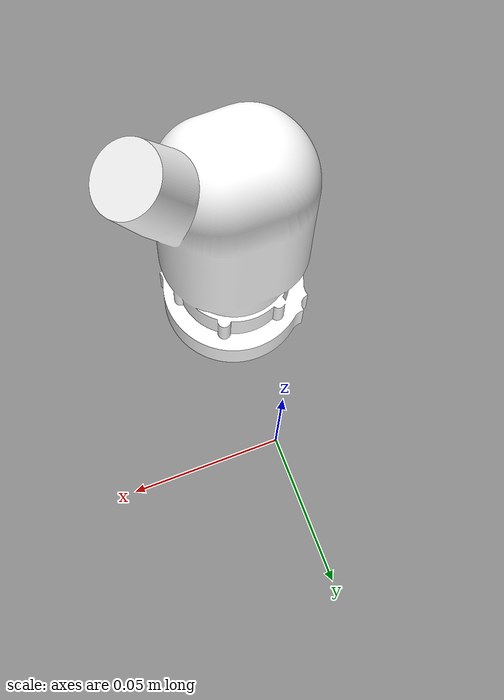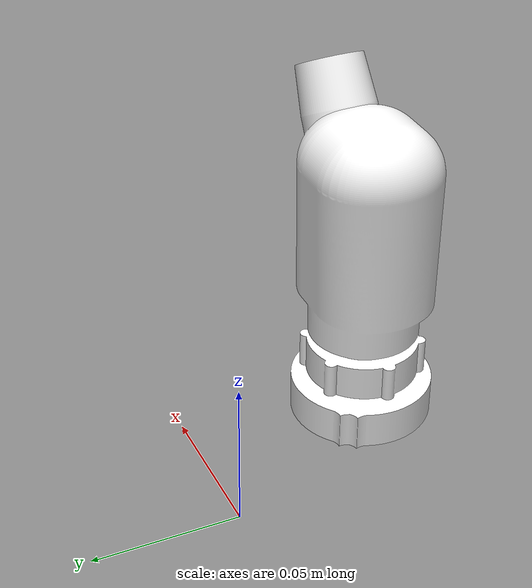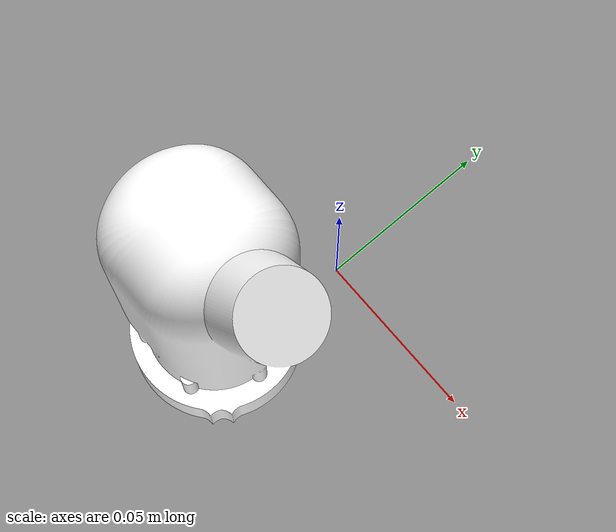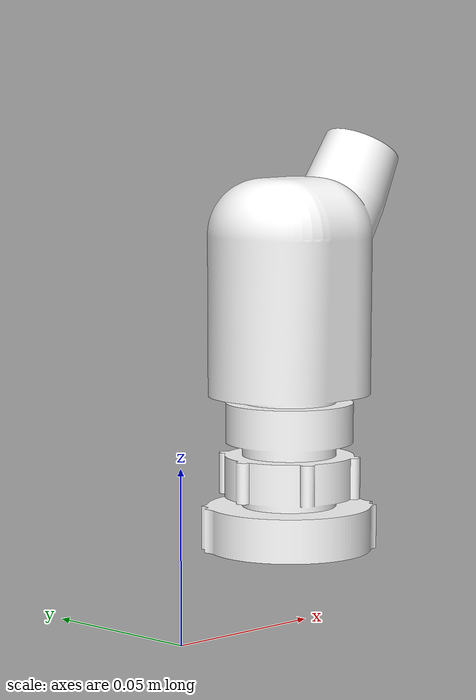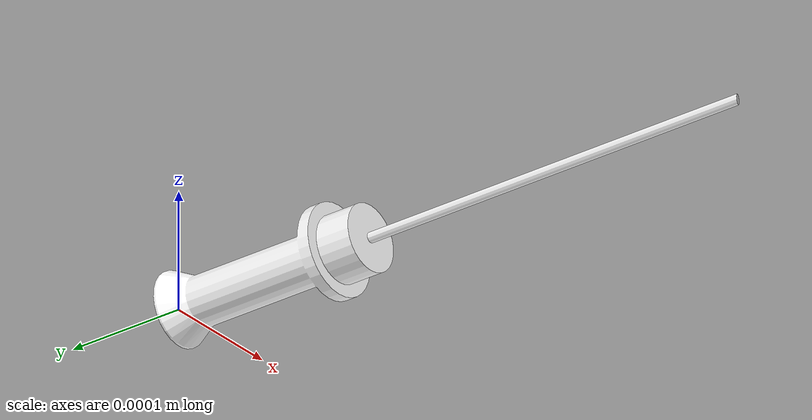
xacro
<?xml version="1.0"?>

<!-- Here we define the robot, we named it "endoscope" -->
<robot xmlns:xacro="http://www.ros.org/wiki/xacro" name="tilt_endoscope">

    <!--Import the endoscope macro -->
    <xacro:include filename="$(find storz_tilt_endoscope_description)/urdf/storz_tilt_endoscope_description.urdf.xacro"/>

    <!--  Arguments for the med7 macro  -->
    <xacro:arg name="tilt_endoscope_name" default="storz_tilt_endoscope"/>
    <xacro:arg name="robot_name" default="lbr"/>

    <!-- fix to world -->
    <link name="world"/>

    <!-- insert endoscope -->
    <xacro:storz_tilt_endoscope  tilt_endoscope_name="$(arg tilt_endoscope_name)" robot_name="$(arg robot_name)" parent="world"/>

</robot>

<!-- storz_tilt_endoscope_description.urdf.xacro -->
<robot xmlns:xacro="http://www.ros.org/wiki/xacro">

    <xacro:macro name="storz_tilt_endoscope" params="tilt_endoscope_name robot_name parent">

        <!-- include gazebo specifications -->
        <xacro:include filename="$(find storz_tilt_endoscope_description)/gazebo/storz_tilt_endoscope.gazebo.xacro" />

        <!--joint between {parent} and link_0-->
        <joint name="${parent}_${tilt_endoscope_name}_joint" type="fixed">
            <parent link="${parent}"/>
            <child link="${tilt_endoscope_name}_link_0"/>
            <origin xyz="0 0 0" rpy="0 -1.57079632679 1.57079632679"/>
        </joint>

        <!-- link 0 -->
        <link name="${tilt_endoscope_name}_link_0">
            <inertial>
                <origin rpy="0 0 0" xyz="0.04830297365758059 -0.0006782042494082333 -0.06627211587266267"/>
                    <mass value="2.359529998440728"/>
                    <inertia ixx="0.013457" ixy="1.3e-05" ixz="0.001204" iyy="0.013939" iyz="-0.000161" izz="0.001273"/>
            </inertial>
            <visual>
                <origin rpy="0 0 0" xyz="0 0 0"/>
                <geometry>
                    <mesh filename="package://storz_tilt_endoscope_description/meshes/visual/link_0.stl" scale="0.001 0.001 0.001"/>
                </geometry>
                <material name="white">
                    <color rgba="1.0 1.0 1.0 1.0"/>
                </material>
            </visual>
            <collision>
                <origin rpy="0 0 0" xyz="0 0 0"/>
                <geometry>
                <mesh filename="package://storz_tilt_endoscope_description/meshes/collision/link_0.stl" scale="0.001 0.001 0.001"/>
                </geometry>
            </collision>
        </link>

        <joint name="${tilt_endoscope_name}_joint_1" type="fixed">
            <origin rpy="0 0 0" xyz="0.056 0.00165 0.025"/>
            <parent link="${tilt_endoscope_name}_link_0"/>
            <child link="${tilt_endoscope_name}_link_1"/>
        </joint>

        <!-- link 1 -->
        <link name="${tilt_endoscope_name}_link_1">
            <inertial>
                <origin rpy="0 0 0" xyz="8.326672684688674e-17 -2.168404344971009e-19 0.14370000000000033"/>
                <mass value="0.17719289424593487"/>
                <inertia ixx="0.001221" ixy="-0.0" ixz="0.0" iyy="0.001221" iyz="-0.0" izz="2e-06"/>
            </inertial>
            <visual>
                <origin rpy="0 0 0" xyz="-0.056 -0.00165 -0.025"/>
                <geometry>
                    <mesh filename="package://storz_tilt_endoscope_description/meshes/visual/link_1.stl" scale="0.001 0.001 0.001"/>
                </geometry>
                <material name="white">
                    <color rgba="1.0 1.0 1.0 1.0"/>
                </material>
            </visual>
            <collision>
                <origin rpy="0 0 0" xyz="-0.056 -0.00165 -0.025"/>
                <geometry>
                <mesh filename="package://storz_tilt_endoscope_description/meshes/collision/link_1.stl" scale="0.001 0.001 0.001"/>
                </geometry>
            </collision>
        </link>

        <joint name="${tilt_endoscope_name}_joint_cm" type="fixed">
            <origin rpy="-1.57079632679 -1.57079632679 0" xyz="0.0 0.0 0.2874"/>
            <parent link="${tilt_endoscope_name}_link_1"/>
            <child link="${tilt_endoscope_name}_link_cm"/>
        </joint>

        <!-- camera link -->
        <link name="${tilt_endoscope_name}_link_cm"/>

        <!-- optical frame https://answers.ros.org/question/232534/gazebo-camera-frame-is-inconsistent-with-rviz-opencv-convention/ -->
        <joint name="${tilt_endoscope_name}_joint_cm_optical" type="fixed">  <!-- add continuous joint to rotate image digitally -->
            <parent link="${tilt_endoscope_name}_link_cm"/>
            <child link="${tilt_endoscope_name}_link_cm_optical"/>
            <origin xyz="0 0 0" rpy="-1.57079632679 0 -1.57079632679"/>
            <!--axis xyz="0.0 0.0 0.01"/-->  <!-- rotate about the optical axis -->
        </joint>

        <link name="${tilt_endoscope_name}_link_cm_optical">
        </link>

        <!-- extensions -->
        <xacro:storz_tilt_endoscope_gazebo tilt_endoscope_name="${tilt_endoscope_name}" robot_name="${robot_name}"/>

    </xacro:macro>
</robot>
